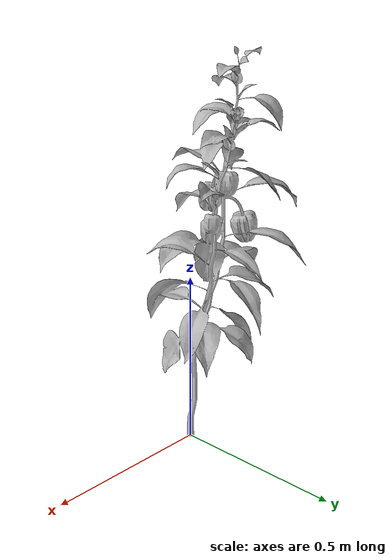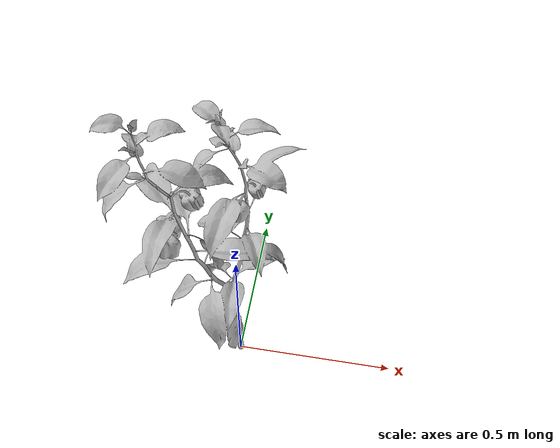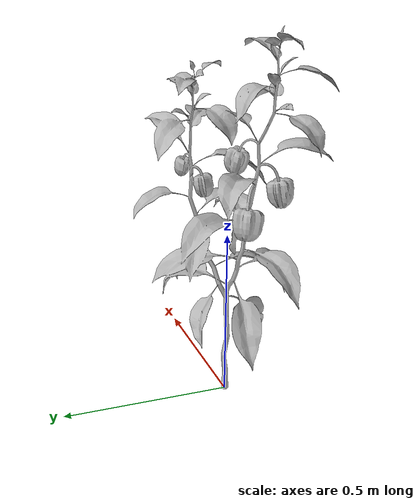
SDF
<?xml version='1.0'?>
<sdf version='1.6'>
  <model name='capsicum_plant_5'>
    <link name='link_capsicum_plant_5'>
       <visual name='visual'>
        <pose frame=''>0 0 0 0 0 0</pose>
        <geometry>
          <mesh>
            <uri>model://capsicum_plant_5/meshes/VG07_5.dae</uri>
          </mesh>
        </geometry>
      </visual>
    </link>
    <static>1</static>
  </model>
</sdf>
